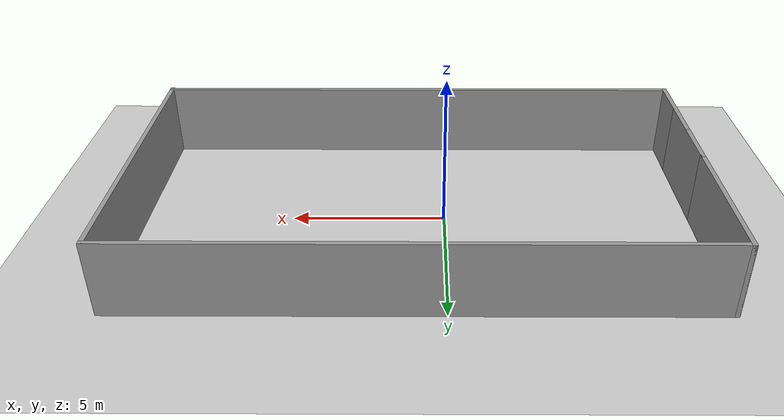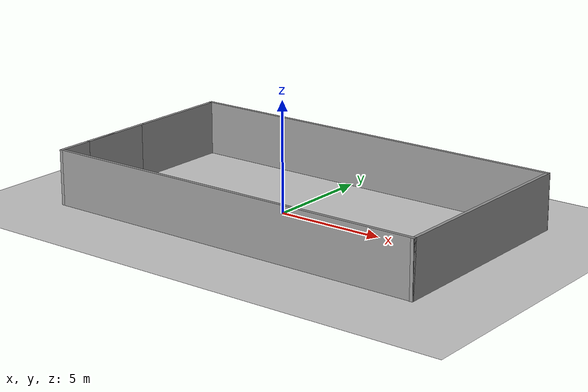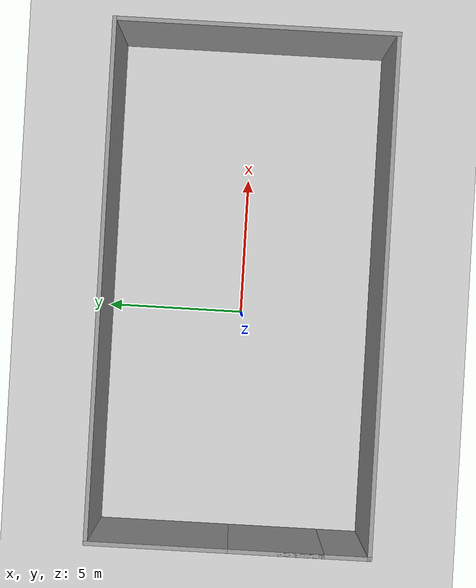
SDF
<sdf version="1.6">
 <world name="default">
  <light name="sun" type="directional">
   <pose>0 0 10 0 -0 0</pose>
   <diffuse>0.8 0.8 0.8 1</diffuse>
   <specular>0.1 0.1 0.1 1</specular>
   <attenuation>
    <range>1000</range>
    <constant>0.9</constant>
    <linear>0.01</linear>
    <quadratic>0.001</quadratic>
   </attenuation>
   <direction>-0.5 0.5 -1</direction>
  </light>
  <model name="ground_plane">
   <static>1</static>
   <link name="link">
    <collision name="collision">
     <geometry><plane><normal>0 0 1</normal><size>100 100</size></plane></geometry>
     <surface><friction><ode><mu>100</mu><mu2>50</mu2></ode></friction></surface>
    </collision>
    <visual name="visual">
     <cast_shadows>0</cast_shadows>
     <geometry><plane><normal>0 0 1</normal><size>100 100</size></plane></geometry>
     <material>
      <script><uri>file://media/materials/scripts/gazebo.material</uri><name>Gazebo/Grey</name></script>
     </material>
    </visual>
   </link>
  </model>
  <gravity>0 0 -9.8</gravity>
  <magnetic_field>6e-06 2.3e-05 -4.2e-05</magnetic_field>
  <atmosphere type="adiabatic"/>
  <physics name="default_physics" default="0" type="ode">
   <max_step_size>0.001</max_step_size>
   <real_time_factor>1</real_time_factor>
   <real_time_update_rate>1000</real_time_update_rate>
  </physics>
  <scene><ambient>0.4 0.4 0.4 1</ambient><background>0.7 0.7 0.7 1</background><shadows>1</shadows></scene>
  <spherical_coordinates>
   <surface_model>EARTH_WGS84</surface_model>
   <latitude_deg>0</latitude_deg>
   <longitude_deg>0</longitude_deg>
   <elevation>0</elevation>
   <heading_deg>0</heading_deg>
  </spherical_coordinates>
  <model name="square">
   <pose>0.88437 0.024943 0 0 -0 0</pose>
   <link name="Wall_1">
    <collision name="Wall_1_Collision">
     <geometry><box><size>3.5 0.15 2.5</size></box></geometry>
     <pose>0 0 1.25 0 -0 0</pose>
    </collision>
    <visual name="Wall_1_Visual">
     <pose>0 0 1.25 0 -0 0</pose>
     <geometry><box><size>3.5 0.15 2.5</size></box></geometry>
     <material>
      <script><uri>file://media/materials/scripts/gazebo.material</uri><name>Gazebo/Grey</name></script>
      <ambient>1 1 1 1</ambient>
     </material>
    </visual>
    <pose>-9.08437 -1.58994 0 0 -0 1.5708</pose>
   </link>
   <link name="Wall_10">
    <collision name="Wall_10_Collision">
     <geometry><box><size>3.25 0.15 2.5</size></box></geometry>
     <pose>0 0 1.25 0 -0 0</pose>
    </collision>
    <visual name="Wall_10_Visual">
     <pose>0 0 1.25 0 -0 0</pose>
     <geometry><box><size>3.25 0.15 2.5</size></box></geometry>
     <material>
      <script><uri>file://media/materials/scripts/gazebo.material</uri><name>Gazebo/Grey</name></script>
      <ambient>1 1 1 1</ambient>
     </material>
    </visual>
    <pose>-9.08437 -3.36494 0 0 -0 1.5708</pose>
   </link>
   <link name="Wall_4">
    <collision name="Wall_4_Collision">
     <geometry><box><size>5 0.15 2.5</size></box></geometry>
     <pose>0 0 1.25 0 -0 0</pose>
    </collision>
    <visual name="Wall_4_Visual">
     <pose>0 0 1.25 0 -0 0</pose>
     <geometry><box><size>5 0.15 2.5</size></box></geometry>
     <material>
      <script><uri>file://media/materials/scripts/gazebo.material</uri><name>Gazebo/Grey</name></script>
      <ambient>1 1 1 1</ambient>
     </material>
    </visual>
    <pose>-9.08437 2.51006 0 0 -0 1.5708</pose>
   </link>
   <link name="Wall_7">
    <collision name="Wall_7_Collision">
     <geometry><box><size>18.3187 0.15 2.5</size></box></geometry>
     <pose>0 0 1.25 0 -0 0</pose>
    </collision>
    <visual name="Wall_7_Visual">
     <pose>0 0 1.25 0 -0 0</pose>
     <geometry><box><size>18.3187 0.15 2.5</size></box></geometry>
     <material>
      <script><uri>file://media/materials/scripts/gazebo.material</uri><name>Gazebo/Grey</name></script>
      <ambient>1 1 1 1</ambient>
     </material>
    </visual>
    <pose>0 4.93506 0 0 -0 0</pose>
   </link>
   <link name="Wall_8">
    <collision name="Wall_8_Collision">
     <geometry><box><size>10 0.15 2.5</size></box></geometry>
     <pose>0 0 1.25 0 -0 0</pose>
    </collision>
    <visual name="Wall_8_Visual">
     <pose>0 0 1.25 0 -0 0</pose>
     <geometry><box><size>10 0.15 2.5</size></box></geometry>
     <material>
      <script><uri>file://media/materials/scripts/gazebo.material</uri><name>Gazebo/Grey</name></script>
      <ambient>1 1 1 1</ambient>
     </material>
    </visual>
    <pose>9.08437 -0.010057 0 0 0 -1.5708</pose>
   </link>
   <link name="Wall_9">
    <collision name="Wall_9_Collision">
     <geometry><box><size>18.3187 0.15 2.5</size></box></geometry>
     <pose>0 0 1.25 0 -0 0</pose>
    </collision>
    <visual name="Wall_9_Visual">
     <pose>0 0 1.25 0 -0 0</pose>
     <geometry><box><size>18.3187 0.15 2.5</size></box></geometry>
     <material>
      <script><uri>file://media/materials/scripts/gazebo.material</uri><name>Gazebo/Grey</name></script>
      <ambient>1 1 1 1</ambient>
     </material>
    </visual>
    <pose>0 -4.91494 0 0 -0 3.14159</pose>
   </link>
   <static>1</static>
  </model>
 </world>
</sdf>
